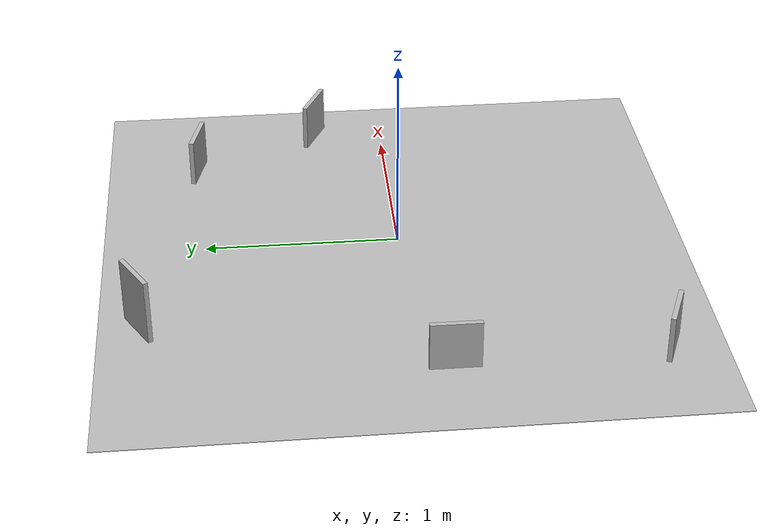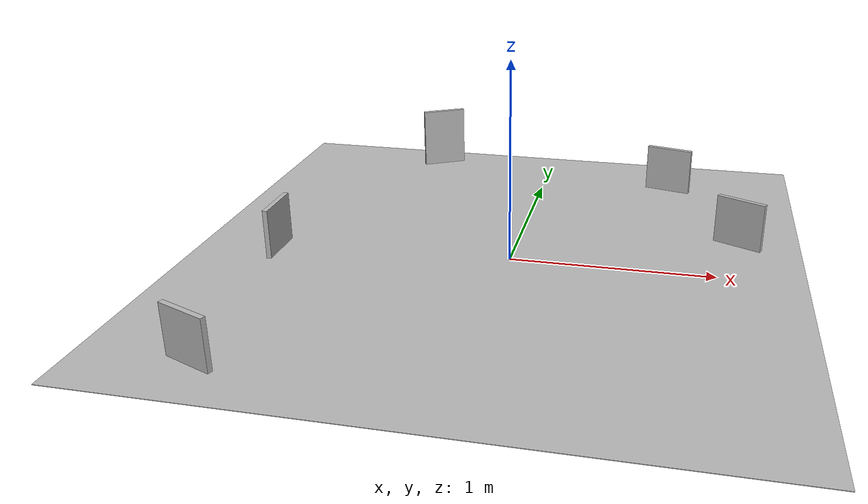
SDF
<sdf version="1.6">
 <world name="default">
  <light name="sun" type="directional">
   <pose>0 0 10 0 -0 0</pose>
   <diffuse>0.8 0.8 0.8 1</diffuse>
   <specular>0.2 0.2 0.2 1</specular>
   <attenuation>
    <range>1000</range>
    <constant>0.9</constant>
    <linear>0.01</linear>
    <quadratic>0.001</quadratic>
   </attenuation>
   <direction>-0.5 0.1 -0.9</direction>
  </light>
  <gravity>0 0 -9.8</gravity>
  <magnetic_field>6e-06 2.3e-05 -4.2e-05</magnetic_field>
  <atmosphere type="adiabatic"/>
  <physics name="default_physics" default="0" type="ode">
   <max_step_size>0.001</max_step_size>
   <real_time_factor>1</real_time_factor>
   <real_time_update_rate>1000</real_time_update_rate>
  </physics>
  <scene><ambient>0.4 0.4 0.4 1</ambient><background>0.7 0.7 0.7 1</background><shadows>1</shadows></scene>
  <audio><device>default</device></audio>
  <spherical_coordinates>
   <surface_model>EARTH_WGS84</surface_model>
   <latitude_deg>0</latitude_deg>
   <longitude_deg>0</longitude_deg>
   <elevation>0</elevation>
   <heading_deg>0</heading_deg>
  </spherical_coordinates>
  <model name="course">
   <static>1</static>
   <link name="course_link">
    <collision name="course_collision">
     <geometry><plane><normal>0 0 1</normal><size>3 3</size></plane></geometry>
     <surface><friction><ode><mu>100</mu><mu2>50</mu2></ode></friction></surface>
    </collision>
    <visual name="course_visual">
     <cast_shadows>0</cast_shadows>
     <geometry><plane><normal>0 0 1</normal><size>3 3</size></plane></geometry>
     <material>
      <script>
       <uri>model://course/materials/scripts</uri>
       <uri>model://course/materials/textures</uri>
       <name>course</name>
      </script>
     </material>
    </visual>
   </link>
   <pose>-0.08158 0.02514 0 0 -0 0</pose>
  </model>
  <model name="bear_panel">
   <static>1</static>
   <link name="box">
    <collision name="collision"><geometry><box><size>0.25 0.025 0.35</size></box></geometry></collision>
    <visual name="visual">
     <geometry><box><size>0.25 0.025 0.35</size></box></geometry>
     <material>
      <script>
       <uri>model://bear_panel/materials/scripts</uri>
       <uri>model://bear_panel/materials/textures</uri>
       <name>bear_panel</name>
      </script>
     </material>
    </visual>
   </link>
   <pose>-0.68113 1.32624 0.166256 0 -0 0.506426</pose>
  </model>
  <model name="cow_panel">
   <static>1</static>
   <link name="box">
    <collision name="collision"><geometry><box><size>0.25 0.025 0.25</size></box></geometry></collision>
    <visual name="visual">
     <geometry><box><size>0.25 0.025 0.25</size></box></geometry>
     <material>
      <script>
       <uri>model://cow_panel/materials/scripts</uri>
       <uri>model://cow_panel/materials/textures</uri>
       <name>cow_panel</name>
      </script>
     </material>
    </visual>
   </link>
   <pose>-1.06649 -1.21255 0.122655 0 0 -0.376847</pose>
  </model>
  <model name="giraffe_panel">
   <static>1</static>
   <link name="box">
    <collision name="collision"><geometry><box><size>0.25 0.025 0.25</size></box></geometry></collision>
    <visual name="visual">
     <geometry><box><size>0.25 0.025 0.25</size></box></geometry>
     <material>
      <script>
       <uri>model://giraffe_panel/materials/scripts</uri>
       <uri>model://giraffe_panel/materials/textures</uri>
       <name>giraffe_panel</name>
      </script>
     </material>
    </visual>
   </link>
   <pose>0.727668 1.03039 0.160901 0 0 -0.247178</pose>
  </model>
  <model name="zebra_panel">
   <static>1</static>
   <link name="box">
    <collision name="collision"><geometry><box><size>0.25 0.025 0.25</size></box></geometry></collision>
    <visual name="visual">
     <geometry><box><size>0.25 0.025 0.25</size></box></geometry>
     <material>
      <script>
       <uri>model://zebra_panel/materials/scripts</uri>
       <uri>model://zebra_panel/materials/textures</uri>
       <name>zebra_panel</name>
      </script>
     </material>
    </visual>
   </link>
   <pose>1.10502 0.375368 0.134344 0 0 -0.441298</pose>
  </model>
  <model name="horse_panel">
   <static>1</static>
   <link name="box">
    <collision name="collision"><geometry><box><size>0.25 0.025 0.25</size></box></geometry></collision>
    <visual name="visual">
     <geometry><box><size>0.25 0.025 0.25</size></box></geometry>
     <material>
      <script>
       <uri>model://horse_panel/materials/scripts</uri>
       <uri>model://horse_panel/materials/textures</uri>
       <name>horse_panel</name>
      </script>
     </material>
    </visual>
   </link>
   <pose>-1.14818 -0.156572 0.147695 0 -0 1.56458</pose>
  </model>
 </world>
</sdf>
